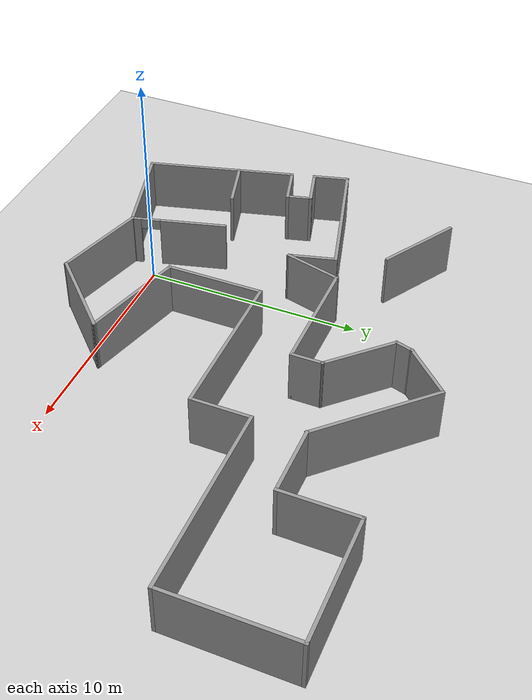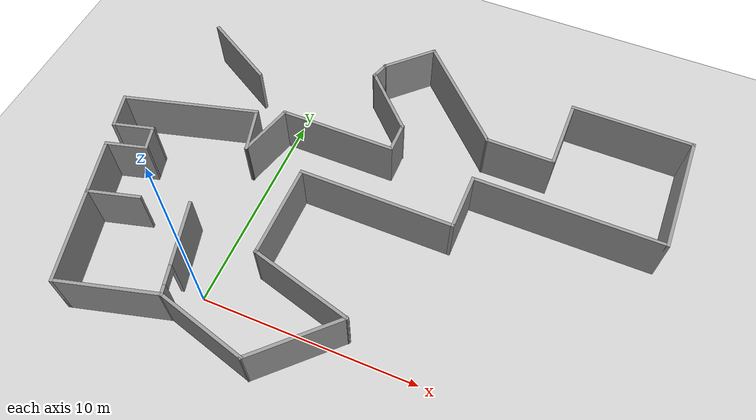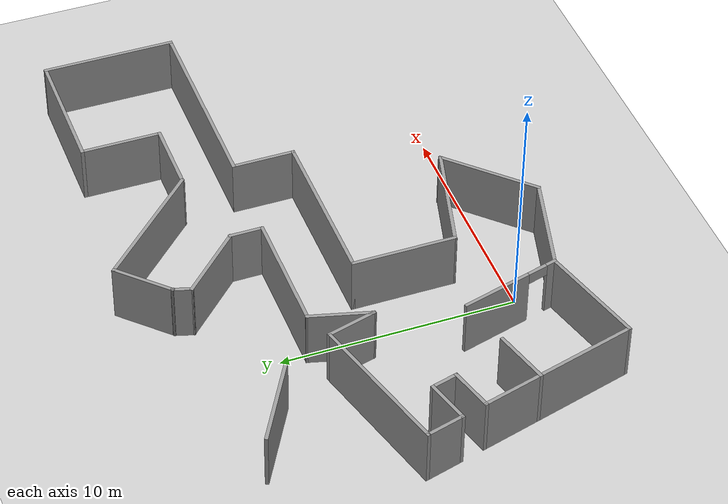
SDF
<sdf version="1.6">
 <world name="default">
  <light name="sun" type="directional">
   <pose>0 0 10 0 -0 0</pose>
   <diffuse>0.8 0.8 0.8 1</diffuse>
   <specular>0.1 0.1 0.1 1</specular>
   <attenuation>
    <range>1000</range>
    <constant>0.9</constant>
    <linear>0.01</linear>
    <quadratic>0.001</quadratic>
   </attenuation>
   <direction>-0.5 0.5 -1</direction>
  </light>
  <model name="ground_plane">
   <static>1</static>
   <link name="link">
    <collision name="collision">
     <geometry><plane><normal>0 0 1</normal><size>100 100</size></plane></geometry>
     <surface><friction><ode><mu>100</mu><mu2>50</mu2></ode></friction></surface>
    </collision>
    <visual name="visual">
     <cast_shadows>0</cast_shadows>
     <geometry><plane><normal>0 0 1</normal><size>100 100</size></plane></geometry>
     <material>
      <script><uri>file://media/materials/scripts/gazebo.material</uri><name>Gazebo/Grey</name></script>
     </material>
    </visual>
   </link>
  </model>
  <gravity>0 0 -9.8</gravity>
  <magnetic_field>6e-06 2.3e-05 -4.2e-05</magnetic_field>
  <atmosphere type="adiabatic"/>
  <physics name="default_physics" default="0" type="ode">
   <max_step_size>0.001</max_step_size>
   <real_time_factor>1</real_time_factor>
   <real_time_update_rate>1000</real_time_update_rate>
  </physics>
  <scene><ambient>0.4 0.4 0.4 1</ambient><background>0.7 0.7 0.7 1</background><shadows>1</shadows></scene>
  <spherical_coordinates>
   <surface_model>EARTH_WGS84</surface_model>
   <latitude_deg>0</latitude_deg>
   <longitude_deg>0</longitude_deg>
   <elevation>0</elevation>
   <heading_deg>0</heading_deg>
  </spherical_coordinates>
  <model name="Untitled">
   <pose>4.98967 6.37792 0 0 -0 0</pose>
   <link name="Wall_1">
    <collision name="Wall_1_Collision">
     <geometry><box><size>4 0.15 2.5</size></box></geometry>
     <pose>0 0 1.25 0 -0 0</pose>
    </collision>
    <visual name="Wall_1_Visual">
     <pose>0 0 1.25 0 -0 0</pose>
     <geometry><box><size>4 0.15 2.5</size></box></geometry>
     <material>
      <script><uri>file://media/materials/scripts/gazebo.material</uri><name>Gazebo/Grey</name></script>
      <ambient>1 1 1 1</ambient>
     </material>
    </visual>
    <pose>-9.06463 5.16801 0 0 0 -0.523599</pose>
   </link>
   <link name="Wall_10">
    <collision name="Wall_10_Collision">
     <geometry><box><size>2.75 0.15 2.5</size></box></geometry>
     <pose>0 0 1.25 0 -0 0</pose>
    </collision>
    <visual name="Wall_10_Visual">
     <pose>0 0 1.25 0 -0 0</pose>
     <geometry><box><size>2.75 0.15 2.5</size></box></geometry>
     <material>
      <script><uri>file://media/materials/scripts/gazebo.material</uri><name>Gazebo/Grey</name></script>
      <ambient>1 1 1 1</ambient>
     </material>
    </visual>
    <pose>4.02534 1.17255 0 0 -0 1.5708</pose>
   </link>
   <link name="Wall_12">
    <collision name="Wall_12_Collision">
     <geometry><box><size>4.75 0.15 2.5</size></box></geometry>
     <pose>0 0 1.25 0 -0 0</pose>
    </collision>
    <visual name="Wall_12_Visual">
     <pose>0 0 1.25 0 -0 0</pose>
     <geometry><box><size>4.75 0.15 2.5</size></box></geometry>
     <material>
      <script><uri>file://media/materials/scripts/gazebo.material</uri><name>Gazebo/Grey</name></script>
      <ambient>1 1 1 1</ambient>
     </material>
    </visual>
    <pose>-7.88925 -8.27805 0 0 0 -2.87979</pose>
   </link>
   <link name="Wall_13">
    <collision name="Wall_13_Collision">
     <geometry><box><size>4.5 0.15 2.5</size></box></geometry>
     <pose>0 0 1.25 0 -0 0</pose>
    </collision>
    <visual name="Wall_13_Visual">
     <pose>0 0 1.25 0 -0 0</pose>
     <geometry><box><size>4.5 0.15 2.5</size></box></geometry>
     <material>
      <script><uri>file://media/materials/scripts/gazebo.material</uri><name>Gazebo/Grey</name></script>
      <ambient>1 1 1 1</ambient>
     </material>
    </visual>
    <pose>-10.6738 -6.77245 0 0 -0 1.8326</pose>
   </link>
   <link name="Wall_14">
    <collision name="Wall_14_Collision">
     <geometry><box><size>2.5 0.15 2.5</size></box></geometry>
     <pose>0 0 1.25 0 -0 0</pose>
    </collision>
    <visual name="Wall_14_Visual">
     <pose>0 0 1.25 0 -0 0</pose>
     <geometry><box><size>2.5 0.15 2.5</size></box></geometry>
     <material>
      <script><uri>file://media/materials/scripts/gazebo.material</uri><name>Gazebo/Grey</name></script>
      <ambient>1 1 1 1</ambient>
     </material>
    </visual>
    <pose>-10.1018 -4.36745 0 0 -0 0.261799</pose>
   </link>
   <link name="Wall_16">
    <collision name="Wall_16_Collision">
     <geometry><box><size>2.75 0.15 2.5</size></box></geometry>
     <pose>0 0 1.25 0 -0 0</pose>
    </collision>
    <visual name="Wall_16_Visual">
     <pose>0 0 1.25 0 -0 0</pose>
     <geometry><box><size>2.75 0.15 2.5</size></box></geometry>
     <material>
      <script><uri>file://media/materials/scripts/gazebo.material</uri><name>Gazebo/Grey</name></script>
      <ambient>1 1 1 1</ambient>
     </material>
    </visual>
    <pose>-11.5732 -3.41586 0 0 -0 1.8326</pose>
   </link>
   <link name="Wall_17">
    <collision name="Wall_17_Collision">
     <geometry><box><size>2 0.15 2.5</size></box></geometry>
     <pose>0 0 1.25 0 -0 0</pose>
    </collision>
    <visual name="Wall_17_Visual">
     <pose>0 0 1.25 0 -0 0</pose>
     <geometry><box><size>2 0.15 2.5</size></box></geometry>
     <material>
      <script><uri>file://media/materials/scripts/gazebo.material</uri><name>Gazebo/Grey</name></script>
      <ambient>1 1 1 1</ambient>
     </material>
    </visual>
    <pose>-11.0162 -1.92075 0 0 -0 0.261799</pose>
   </link>
   <link name="Wall_18">
    <collision name="Wall_18_Collision">
     <geometry><box><size>1.25 0.15 2.5</size></box></geometry>
     <pose>0 0 1.25 0 -0 0</pose>
    </collision>
    <visual name="Wall_18_Visual">
     <pose>0 0 1.25 0 -0 0</pose>
     <geometry><box><size>1.25 0.15 2.5</size></box></geometry>
     <material>
      <script><uri>file://media/materials/scripts/gazebo.material</uri><name>Gazebo/Grey</name></script>
      <ambient>1 1 1 1</ambient>
     </material>
    </visual>
    <pose>-10.2651 -1.15008 0 0 -0 1.8326</pose>
   </link>
   <link name="Wall_19">
    <collision name="Wall_19_Collision">
     <geometry><box><size>2 0.15 2.5</size></box></geometry>
     <pose>0 0 1.25 0 -0 0</pose>
    </collision>
    <visual name="Wall_19_Visual">
     <pose>0 0 1.25 0 -0 0</pose>
     <geometry><box><size>2 0.15 2.5</size></box></geometry>
     <material>
      <script><uri>file://media/materials/scripts/gazebo.material</uri><name>Gazebo/Grey</name></script>
      <ambient>1 1 1 1</ambient>
     </material>
    </visual>
    <pose>-11.3009 -0.858228 0 0 0 -2.87979</pose>
   </link>
   <link name="Wall_20">
    <collision name="Wall_20_Collision">
     <geometry><box><size>1.75 0.15 2.5</size></box></geometry>
     <pose>0 0 1.25 0 -0 0</pose>
    </collision>
    <visual name="Wall_20_Visual">
     <pose>0 0 1.25 0 -0 0</pose>
     <geometry><box><size>1.75 0.15 2.5</size></box></geometry>
     <material>
      <script><uri>file://media/materials/scripts/gazebo.material</uri><name>Gazebo/Grey</name></script>
      <ambient>1 1 1 1</ambient>
     </material>
    </visual>
    <pose>-12.4014 -0.324895 0 0 -0 1.8326</pose>
   </link>
   <link name="Wall_21">
    <collision name="Wall_21_Collision">
     <geometry><box><size>6.5 0.15 2.5</size></box></geometry>
     <pose>0 0 1.25 0 -0 0</pose>
    </collision>
    <visual name="Wall_21_Visual">
     <pose>0 0 1.25 0 -0 0</pose>
     <geometry><box><size>6.5 0.15 2.5</size></box></geometry>
     <material>
      <script><uri>file://media/materials/scripts/gazebo.material</uri><name>Gazebo/Grey</name></script>
      <ambient>1 1 1 1</ambient>
     </material>
    </visual>
    <pose>-9.54167 1.2696 0 0 -0 0.261799</pose>
   </link>
   <link name="Wall_22">
    <collision name="Wall_22_Collision">
     <geometry><box><size>2.25 0.15 2.5</size></box></geometry>
     <pose>0 0 1.25 0 -0 0</pose>
    </collision>
    <visual name="Wall_22_Visual">
     <pose>0 0 1.25 0 -0 0</pose>
     <geometry><box><size>2.25 0.15 2.5</size></box></geometry>
     <material>
      <script><uri>file://media/materials/scripts/gazebo.material</uri><name>Gazebo/Grey</name></script>
      <ambient>1 1 1 1</ambient>
     </material>
    </visual>
    <pose>-6.20309 1.07713 0 0 0 -1.309</pose>
   </link>
   <link name="Wall_23">
    <collision name="Wall_23_Collision">
     <geometry><box><size>2.75 0.15 2.5</size></box></geometry>
     <pose>0 0 1.25 0 -0 0</pose>
    </collision>
    <visual name="Wall_23_Visual">
     <pose>0 0 1.25 0 -0 0</pose>
     <geometry><box><size>2.75 0.15 2.5</size></box></geometry>
     <material>
      <script><uri>file://media/materials/scripts/gazebo.material</uri><name>Gazebo/Grey</name></script>
      <ambient>1 1 1 1</ambient>
     </material>
    </visual>
    <pose>-5.59487 1.31861 0 0 -0 1.309</pose>
   </link>
   <link name="Wall_24">
    <collision name="Wall_24_Collision">
     <geometry><box><size>5.5 0.15 2.5</size></box></geometry>
     <pose>0 0 1.25 0 -0 0</pose>
    </collision>
    <visual name="Wall_24_Visual">
     <pose>0 0 1.25 0 -0 0</pose>
     <geometry><box><size>5.5 0.15 2.5</size></box></geometry>
     <material>
      <script><uri>file://media/materials/scripts/gazebo.material</uri><name>Gazebo/Grey</name></script>
      <ambient>1 1 1 1</ambient>
     </material>
    </visual>
    <pose>-2.5834 2.57431 0 0 -0 0</pose>
   </link>
   <link name="Wall_25">
    <collision name="Wall_25_Collision">
     <geometry><box><size>1.5 0.15 2.5</size></box></geometry>
     <pose>0 0 1.25 0 -0 0</pose>
    </collision>
    <visual name="Wall_25_Visual">
     <pose>0 0 1.25 0 -0 0</pose>
     <geometry><box><size>1.5 0.15 2.5</size></box></geometry>
     <material>
      <script><uri>file://media/materials/scripts/gazebo.material</uri><name>Gazebo/Grey</name></script>
      <ambient>1 1 1 1</ambient>
     </material>
    </visual>
    <pose>0.091599 3.24931 0 0 -0 1.5708</pose>
   </link>
   <link name="Wall_26">
    <collision name="Wall_26_Collision">
     <geometry><box><size>3.5 0.15 2.5</size></box></geometry>
     <pose>0 0 1.25 0 -0 0</pose>
    </collision>
    <visual name="Wall_26_Visual">
     <pose>0 0 1.25 0 -0 0</pose>
     <geometry><box><size>3.5 0.15 2.5</size></box></geometry>
     <material>
      <script><uri>file://media/materials/scripts/gazebo.material</uri><name>Gazebo/Grey</name></script>
      <ambient>1 1 1 1</ambient>
     </material>
    </visual>
    <pose>-1.09281 5.10871 0 0 -0 2.35619</pose>
   </link>
   <link name="Wall_29">
    <collision name="Wall_29_Collision">
     <geometry><box><size>8.75 0.15 2.5</size></box></geometry>
     <pose>0 0 1.25 0 -0 0</pose>
    </collision>
    <visual name="Wall_29_Visual">
     <pose>0 0 1.25 0 -0 0</pose>
     <geometry><box><size>8.75 0.15 2.5</size></box></geometry>
     <material>
      <script><uri>file://media/materials/scripts/gazebo.material</uri><name>Gazebo/Grey</name></script>
      <ambient>1 1 1 1</ambient>
     </material>
    </visual>
    <pose>8.32534 2.47255 0 0 -0 0</pose>
   </link>
   <link name="Wall_30">
    <collision name="Wall_30_Collision">
     <geometry><box><size>5.75 0.15 2.5</size></box></geometry>
     <pose>0 0 1.25 0 -0 0</pose>
    </collision>
    <visual name="Wall_30_Visual">
     <pose>0 0 1.25 0 -0 0</pose>
     <geometry><box><size>5.75 0.15 2.5</size></box></geometry>
     <material>
      <script><uri>file://media/materials/scripts/gazebo.material</uri><name>Gazebo/Grey</name></script>
      <ambient>1 1 1 1</ambient>
     </material>
    </visual>
    <pose>12.6253 5.27255 0 0 -0 1.5708</pose>
   </link>
   <link name="Wall_31">
    <collision name="Wall_31_Collision">
     <geometry><box><size>5.75 0.15 2.5</size></box></geometry>
     <pose>0 0 1.25 0 -0 0</pose>
    </collision>
    <visual name="Wall_31_Visual">
     <pose>0 0 1.25 0 -0 0</pose>
     <geometry><box><size>5.75 0.15 2.5</size></box></geometry>
     <material>
      <script><uri>file://media/materials/scripts/gazebo.material</uri><name>Gazebo/Grey</name></script>
      <ambient>1 1 1 1</ambient>
     </material>
    </visual>
    <pose>9.82534 8.07255 0 0 -0 3.14159</pose>
   </link>
   <link name="Wall_32">
    <collision name="Wall_32_Collision">
     <geometry><box><size>3.5 0.15 2.5</size></box></geometry>
     <pose>0 0 1.25 0 -0 0</pose>
    </collision>
    <visual name="Wall_32_Visual">
     <pose>0 0 1.25 0 -0 0</pose>
     <geometry><box><size>3.5 0.15 2.5</size></box></geometry>
     <material>
      <script><uri>file://media/materials/scripts/gazebo.material</uri><name>Gazebo/Grey</name></script>
      <ambient>1 1 1 1</ambient>
     </material>
    </visual>
    <pose>7.02534 6.39755 0 0 0 -1.5708</pose>
   </link>
   <link name="Wall_33">
    <collision name="Wall_33_Collision">
     <geometry><box><size>3.25 0.15 2.5</size></box></geometry>
     <pose>0 0 1.25 0 -0 0</pose>
    </collision>
    <visual name="Wall_33_Visual">
     <pose>0 0 1.25 0 -0 0</pose>
     <geometry><box><size>3.25 0.15 2.5</size></box></geometry>
     <material>
      <script><uri>file://media/materials/scripts/gazebo.material</uri><name>Gazebo/Grey</name></script>
      <ambient>1 1 1 1</ambient>
     </material>
    </visual>
    <pose>5.47534 4.72255 0 0 -0 3.14159</pose>
   </link>
   <link name="Wall_35">
    <collision name="Wall_35_Collision">
     <geometry><box><size>6 0.15 2.5</size></box></geometry>
     <pose>0 0 1.25 0 -0 0</pose>
    </collision>
    <visual name="Wall_35_Visual">
     <pose>0 0 1.25 0 -0 0</pose>
     <geometry><box><size>6 0.15 2.5</size></box></geometry>
     <material>
      <script><uri>file://media/materials/scripts/gazebo.material</uri><name>Gazebo/Grey</name></script>
      <ambient>1 1 1 1</ambient>
     </material>
    </visual>
    <pose>1.85705 6.79084 0 0 -0 2.35619</pose>
   </link>
   <link name="Wall_36">
    <collision name="Wall_36_Collision">
     <geometry><box><size>2.75 0.15 2.5</size></box></geometry>
     <pose>0 0 1.25 0 -0 0</pose>
    </collision>
    <visual name="Wall_36_Visual">
     <pose>0 0 1.25 0 -0 0</pose>
     <geometry><box><size>2.75 0.15 2.5</size></box></geometry>
     <material>
      <script><uri>file://media/materials/scripts/gazebo.material</uri><name>Gazebo/Grey</name></script>
      <ambient>1 1 1 1</ambient>
     </material>
    </visual>
    <pose>-1.13048 7.93989 0 0 0 -2.35619</pose>
   </link>
   <link name="Wall_37">
    <collision name="Wall_37_Collision">
     <geometry><box><size>0.15 0.15 2.5</size></box></geometry>
     <pose>0 0 1.25 0 -0 0</pose>
    </collision>
    <visual name="Wall_37_Visual">
     <pose>0 0 1.25 0 -0 0</pose>
     <geometry><box><size>0.15 0.15 2.5</size></box></geometry>
     <material>
      <script><uri>file://media/materials/scripts/gazebo.material</uri><name>Gazebo/Grey</name></script>
      <ambient>1 1 1 1</ambient>
     </material>
    </visual>
    <pose>-2.04972 7.02065 0 0 -0 0</pose>
   </link>
   <link name="Wall_38">
    <collision name="Wall_38_Collision">
     <geometry><box><size>0.91227 0.15 2.5</size></box></geometry>
     <pose>0 0 1.25 0 -0 0</pose>
    </collision>
    <visual name="Wall_38_Visual">
     <pose>0 0 1.25 0 -0 0</pose>
     <geometry><box><size>0.91227 0.15 2.5</size></box></geometry>
     <material>
      <script><uri>file://media/materials/scripts/gazebo.material</uri><name>Gazebo/Grey</name></script>
      <ambient>1 1 1 1</ambient>
     </material>
    </visual>
    <pose>-2.16346 6.65688 0 0 0 -1.87385</pose>
   </link>
   <link name="Wall_4">
    <pose>-6.23055 -5.58188 0 0 0 -1.309</pose>
    <visual name="Wall_4_Visual_0">
     <pose>-0.698642 0 1.25 0 -0 0</pose>
     <geometry><box><size>3.10272 0.15 2.5</size></box></geometry>
     <material>
      <script><uri>file://media/materials/scripts/gazebo.material</uri><name>Gazebo/Grey</name></script>
      <ambient>1 1 1 1</ambient>
     </material>
    </visual>
    <collision name="Wall_4_Collision_0">
     <geometry><box><size>3.10272 0.15 2.5</size></box></geometry>
     <pose>-0.698642 0 1.25 0 -0 0</pose>
    </collision>
    <visual name="Wall_4_Visual_1">
     <pose>2.00136 0 1.25 0 -0 0</pose>
     <geometry><box><size>0.497284 0.15 2.5</size></box></geometry>
     <material>
      <script><uri>file://media/materials/scripts/gazebo.material</uri><name>Gazebo/Grey</name></script>
      <ambient>1 1 1 1</ambient>
     </material>
    </visual>
    <collision name="Wall_4_Collision_1">
     <geometry><box><size>0.497284 0.15 2.5</size></box></geometry>
     <pose>2.00136 0 1.25 0 -0 0</pose>
    </collision>
    <visual name="Wall_4_Visual_2">
     <pose>1.30272 0 2.25 0 -0 0</pose>
     <geometry><box><size>0.9 0.15 0.5</size></box></geometry>
     <material>
      <script><uri>file://media/materials/scripts/gazebo.material</uri><name>Gazebo/Grey</name></script>
      <ambient>1 1 1 1</ambient>
     </material>
    </visual>
    <collision name="Wall_4_Collision_2">
     <geometry><box><size>0.9 0.15 0.5</size></box></geometry>
     <pose>1.30272 0 2.25 0 -0 0</pose>
    </collision>
   </link>
   <link name="Wall_5">
    <collision name="Wall_5_Collision">
     <geometry><box><size>4.5 0.15 2.5</size></box></geometry>
     <pose>0 0 1.25 0 -0 0</pose>
    </collision>
    <visual name="Wall_5_Visual">
     <pose>0 0 1.25 0 -0 0</pose>
     <geometry><box><size>4.5 0.15 2.5</size></box></geometry>
     <material>
      <script><uri>file://media/materials/scripts/gazebo.material</uri><name>Gazebo/Grey</name></script>
      <ambient>1 1 1 1</ambient>
     </material>
    </visual>
    <pose>-3.56673 -8.2457 0 0 0 -0.261799</pose>
   </link>
   <link name="Wall_6">
    <collision name="Wall_6_Collision">
     <geometry><box><size>4.5 0.15 2.5</size></box></geometry>
     <pose>0 0 1.25 0 -0 0</pose>
    </collision>
    <visual name="Wall_6_Visual">
     <pose>0 0 1.25 0 -0 0</pose>
     <geometry><box><size>4.5 0.15 2.5</size></box></geometry>
     <material>
      <script><uri>file://media/materials/scripts/gazebo.material</uri><name>Gazebo/Grey</name></script>
      <ambient>1 1 1 1</ambient>
     </material>
    </visual>
    <pose>0.072118 -7.27068 0 0 -0 0.785398</pose>
   </link>
   <link name="Wall_7">
    <collision name="Wall_7_Collision">
     <geometry><box><size>5 0.15 2.5</size></box></geometry>
     <pose>0 0 1.25 0 -0 0</pose>
    </collision>
    <visual name="Wall_7_Visual">
     <pose>0 0 1.25 0 -0 0</pose>
     <geometry><box><size>5 0.15 2.5</size></box></geometry>
     <material>
      <script><uri>file://media/materials/scripts/gazebo.material</uri><name>Gazebo/Grey</name></script>
      <ambient>1 1 1 1</ambient>
     </material>
    </visual>
    <pose>-0.732295 -5.10508 0 0 -0 2.87979</pose>
   </link>
   <link name="Wall_8">
    <collision name="Wall_8_Collision">
     <geometry><box><size>4.5 0.15 2.5</size></box></geometry>
     <pose>0 0 1.25 0 -0 0</pose>
    </collision>
    <visual name="Wall_8_Visual">
     <pose>0 0 1.25 0 -0 0</pose>
     <geometry><box><size>4.5 0.15 2.5</size></box></geometry>
     <material>
      <script><uri>file://media/materials/scripts/gazebo.material</uri><name>Gazebo/Grey</name></script>
      <ambient>1 1 1 1</ambient>
     </material>
    </visual>
    <pose>-3.07466 -2.30245 0 0 -0 1.5708</pose>
   </link>
   <link name="Wall_9">
    <collision name="Wall_9_Collision">
     <geometry><box><size>7.25 0.15 2.5</size></box></geometry>
     <pose>0 0 1.25 0 -0 0</pose>
    </collision>
    <visual name="Wall_9_Visual">
     <pose>0 0 1.25 0 -0 0</pose>
     <geometry><box><size>7.25 0.15 2.5</size></box></geometry>
     <material>
      <script><uri>file://media/materials/scripts/gazebo.material</uri><name>Gazebo/Grey</name></script>
      <ambient>1 1 1 1</ambient>
     </material>
    </visual>
    <pose>0.475335 -0.127447 0 0 -0 0</pose>
   </link>
   <static>1</static>
  </model>
 </world>
</sdf>
